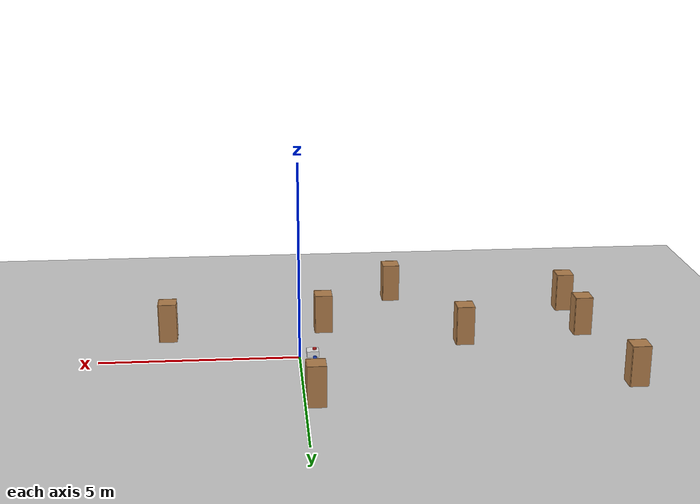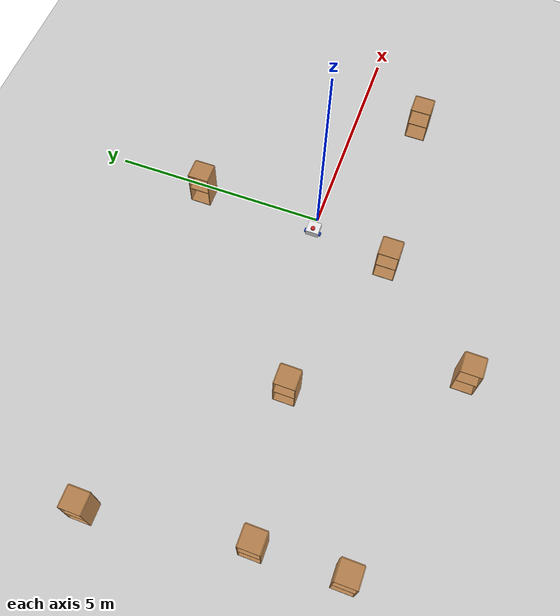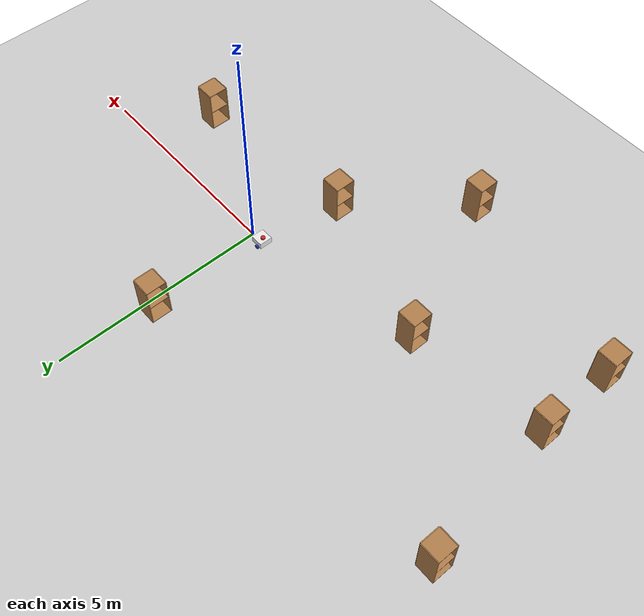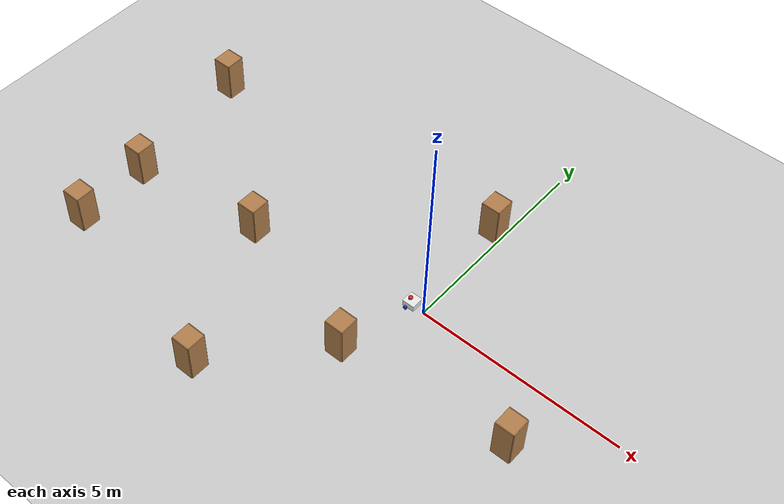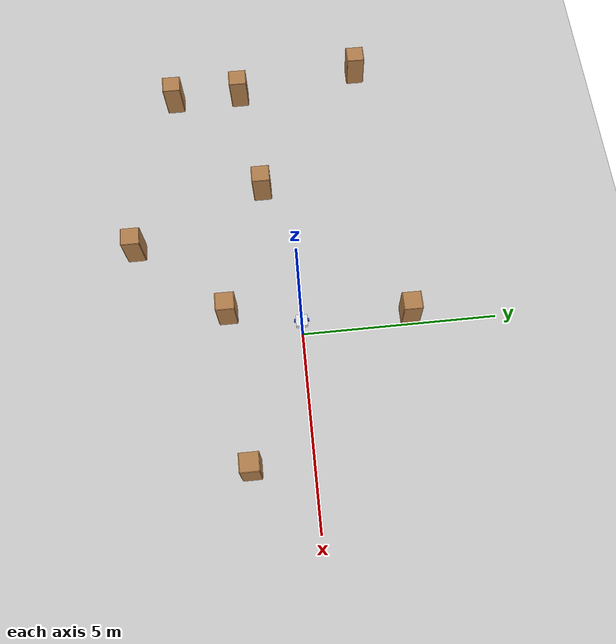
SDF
<sdf version="1.7">
 <world name="default">
  <light name="sun" type="directional">
   <pose>0 0 10 0 -0 0</pose>
   <diffuse>0.8 0.8 0.8 1</diffuse>
   <specular>0.2 0.2 0.2 1</specular>
   <attenuation>
    <range>1000</range>
    <constant>0.9</constant>
    <linear>0.01</linear>
    <quadratic>0.001</quadratic>
   </attenuation>
   <direction>-0.5 0.1 -0.9</direction>
   <spot><inner_angle>0</inner_angle><outer_angle>0</outer_angle><falloff>0</falloff></spot>
  </light>
  <model name="ground_plane">
   <static>1</static>
   <link name="link">
    <collision name="collision">
     <geometry><plane><normal>0 0 1</normal><size>100 100</size></plane></geometry>
     <surface><friction><ode><mu>100</mu><mu2>50</mu2></ode></friction></surface>
    </collision>
    <visual name="visual">
     <cast_shadows>0</cast_shadows>
     <geometry><plane><normal>0 0 1</normal><size>100 100</size></plane></geometry>
     <material>
      <script><uri>file://media/materials/scripts/gazebo.material</uri><name>Gazebo/Grey</name></script>
     </material>
    </visual>
   </link>
  </model>
  <gravity>0 0 -9.8</gravity>
  <magnetic_field>6e-06 2.3e-05 -4.2e-05</magnetic_field>
  <atmosphere type="adiabatic"/>
  <physics type="ode">
   <max_step_size>0.001</max_step_size>
   <real_time_factor>1</real_time_factor>
   <real_time_update_rate>1000</real_time_update_rate>
  </physics>
  <scene><ambient>0.4 0.4 0.4 1</ambient><background>0.7 0.7 0.7 1</background><shadows>1</shadows></scene>
  <audio><device>default</device></audio>
  <spherical_coordinates>
   <surface_model>EARTH_WGS84</surface_model>
   <latitude_deg>0</latitude_deg>
   <longitude_deg>0</longitude_deg>
   <elevation>0</elevation>
   <heading_deg>0</heading_deg>
  </spherical_coordinates>
  <model name="my_robot">
   <link name="base_link">
    <inertial>
     <pose>0.055714 0 0.078571 0 -0 0</pose>
     <mass>0.7</mass>
     <inertia>
      <ixx>0.0064169</ixx>
      <ixy>0</ixy>
      <ixz>0.00118929</ixz>
      <iyy>0.00745405</iyy>
      <iyz>0</iyz>
      <izz>0.00876214</izz>
     </inertia>
    </inertial>
    <collision name="base_link_fixed_joint_lump__chasis_collision">
     <pose>0.05 0 0.075 0 -0 0</pose>
     <geometry><box><size>0.3 0.3 0.15</size></box></geometry>
    </collision>
    <collision name="base_link_fixed_joint_lump__caster_wheel_collision_1">
     <pose>0.14 0 0 0 -0 0</pose>
     <geometry><sphere><radius>0.05</radius></sphere></geometry>
    </collision>
    <collision name="base_link_fixed_joint_lump__laser_frame_collision_2">
     <pose>0 0 0.175 0 -0 0</pose>
     <geometry><cylinder><length>0.04</length><radius>0.05</radius></cylinder></geometry>
    </collision>
    <visual name="base_link_fixed_joint_lump__chasis_visual">
     <pose>0.05 0 0.075 0 -0 0</pose>
     <geometry><box><size>0.3 0.3 0.15</size></box></geometry>
     <material>
      <script><name>Gazebo/White</name><uri>file://media/materials/scripts/gazebo.material</uri></script>
     </material>
    </visual>
    <visual name="base_link_fixed_joint_lump__caster_wheel_visual_1">
     <pose>0.14 0 0 0 -0 0</pose>
     <geometry><sphere><radius>0.05</radius></sphere></geometry>
     <material>
      <script><name>Gazebo/Black</name><uri>file://media/materials/scripts/gazebo.material</uri></script>
     </material>
    </visual>
    <visual name="base_link_fixed_joint_lump__laser_frame_visual_2">
     <pose>0 0 0.175 0 -0 0</pose>
     <geometry><cylinder><length>0.04</length><radius>0.05</radius></cylinder></geometry>
     <material>
      <script><name>Gazebo/Red</name><uri>file://media/materials/scripts/gazebo.material</uri></script>
     </material>
    </visual>
    <sensor name="laser" type="ray">
     <visualize>1</visualize>
     <update_rate>10</update_rate>
     <ray>
      <scan>
       <horizontal>
        <samples>360</samples>
        <resolution>1</resolution>
        <min_angle>-3.14</min_angle>
        <max_angle>3.14</max_angle>
       </horizontal>
       <vertical><samples>1</samples><min_angle>0</min_angle><max_angle>0</max_angle></vertical>
      </scan>
      <range><min>0.3</min><max>12</max><resolution>0.01</resolution></range>
     </ray>
     <plugin name="laser_controller" filename="libgazebo_ros_ray_sensor.so">
      <ros><argument>-/out:=scan</argument></ros>
      <output_type>sensor_msgs/LaserScan</output_type>
      <frame_name>laser_frame</frame_name>
     </plugin>
     <pose>0 0 0.175 0 -0 0</pose>
    </sensor>
   </link>
   <joint name="left_wheel_joint" type="revolute">
    <pose relative_to="base_link">0 0.175 0 -1.5708 0 0</pose>
    <parent>base_link</parent>
    <child>left_wheel</child>
    <axis>
     <xyz>0 0 1</xyz>
     <limit><lower>-1e+16</lower><upper>1e+16</upper></limit>
     <dynamics><spring_reference>0</spring_reference><spring_stiffness>0</spring_stiffness></dynamics>
    </axis>
   </joint>
   <link name="left_wheel">
    <pose relative_to="left_wheel_joint">0 0 0 0 -0 0</pose>
    <inertial>
     <mass>0.1</mass>
     <inertia>
      <ixx>7.58333e-05</ixx>
      <ixy>0</ixy>
      <ixz>0</ixz>
      <iyy>7.58333e-05</iyy>
      <iyz>0</iyz>
      <izz>0.000125</izz>
     </inertia>
    </inertial>
    <collision name="left_wheel_collision">
     <geometry><cylinder><length>0.04</length><radius>0.05</radius></cylinder></geometry>
    </collision>
    <visual name="left_wheel_visual">
     <geometry><cylinder><length>0.04</length><radius>0.05</radius></cylinder></geometry>
     <material>
      <script><name>Gazebo/Blue</name><uri>file://media/materials/scripts/gazebo.material</uri></script>
     </material>
    </visual>
   </link>
   <joint name="right_wheel_joint" type="revolute">
    <pose relative_to="base_link">0 -0.175 0 1.5708 -0 0</pose>
    <parent>base_link</parent>
    <child>right_wheel</child>
    <axis>
     <xyz>0 0 -1</xyz>
     <limit><lower>-1e+16</lower><upper>1e+16</upper></limit>
     <dynamics><spring_reference>0</spring_reference><spring_stiffness>0</spring_stiffness></dynamics>
    </axis>
   </joint>
   <link name="right_wheel">
    <pose relative_to="right_wheel_joint">0 0 0 0 -0 0</pose>
    <inertial>
     <mass>0.1</mass>
     <inertia>
      <ixx>7.58333e-05</ixx>
      <ixy>0</ixy>
      <ixz>0</ixz>
      <iyy>7.58333e-05</iyy>
      <iyz>0</iyz>
      <izz>0.000125</izz>
     </inertia>
    </inertial>
    <collision name="right_wheel_collision">
     <geometry><cylinder><length>0.04</length><radius>0.05</radius></cylinder></geometry>
    </collision>
    <visual name="right_wheel_visual">
     <geometry><cylinder><length>0.04</length><radius>0.05</radius></cylinder></geometry>
     <material>
      <script><name>Gazebo/Blue</name><uri>file://media/materials/scripts/gazebo.material</uri></script>
     </material>
    </visual>
   </link>
   <pose>-0.367799 0.000405 0.05 0 1e-06 0.000558</pose>
  </model>
  <model name="cabinet">
   <static>1</static>
   <link name="cabinet_bottom_plate">
    <inertial>
     <pose>0 0 -1 0 -0 0</pose>
     <inertia><ixx>2.05</ixx><ixy>0</ixy><ixz>0</ixz><iyy>2.05</iyy><iyz>0</iyz><izz>2.05</izz></inertia>
     <mass>25</mass>
    </inertial>
    <collision name="cabinet_bottom_plate_geom">
     <pose>0 0 0.01 0 -0 0</pose>
     <geometry><box><size>0.45 0.45 0.02</size></box></geometry>
    </collision>
    <visual name="cabinet_bottom_plate_geom_visual">
     <pose>0 0 0.01 0 -0 0</pose>
     <geometry><box><size>0.45 0.45 0.02</size></box></geometry>
     <material>
      <script><uri>file://media/materials/scripts/gazebo.material</uri><name>Gazebo/Wood</name></script>
     </material>
    </visual>
    <collision name="cabinet_bottom_plate_geom_cabinet_back_plate">
     <pose>0.235 0 0.51 0 -0 0</pose>
     <geometry><box><size>0.02 0.45 1.02</size></box></geometry>
    </collision>
    <visual name="cabinet_bottom_plate_geom_cabinet_back_plate_visual">
     <pose>0.235 0 0.51 0 -0 0</pose>
     <geometry><box><size>0.02 0.45 1.02</size></box></geometry>
     <material>
      <script><uri>file://media/materials/scripts/gazebo.material</uri><name>Gazebo/Wood</name></script>
     </material>
    </visual>
    <collision name="cabinet_bottom_plate_geom_cabinet_left_plate">
     <pose>0 0.235 0.51 0 -0 0</pose>
     <geometry><box><size>0.45 0.02 1.02</size></box></geometry>
    </collision>
    <visual name="cabinet_bottom_plate_geom_cabinet_left_plate_visual">
     <pose>0 0.235 0.51 0 -0 0</pose>
     <geometry><box><size>0.45 0.02 1.02</size></box></geometry>
     <material>
      <script><uri>file://media/materials/scripts/gazebo.material</uri><name>Gazebo/Wood</name></script>
     </material>
    </visual>
    <collision name="cabinet_bottom_plate_geom_cabinet_middle_plate">
     <pose>0 0 0.51 0 -0 0</pose>
     <geometry><box><size>0.45 0.45 0.02</size></box></geometry>
    </collision>
    <visual name="cabinet_bottom_plate_geom_cabinet_middle_plate_visual">
     <pose>0 0 0.51 0 -0 0</pose>
     <geometry><box><size>0.45 0.45 0.02</size></box></geometry>
     <material>
      <script><uri>file://media/materials/scripts/gazebo.material</uri><name>Gazebo/Wood</name></script>
     </material>
    </visual>
    <collision name="cabinet_bottom_plate_geom_cabinet_right_plate">
     <pose>0 -0.235 0.51 0 -0 0</pose>
     <geometry><box><size>0.45 0.02 1.02</size></box></geometry>
    </collision>
    <visual name="cabinet_bottom_plate_geom_cabinet_right_plate_visual">
     <pose>0 -0.235 0.51 0 -0 0</pose>
     <geometry><box><size>0.45 0.02 1.02</size></box></geometry>
     <material>
      <script><uri>file://media/materials/scripts/gazebo.material</uri><name>Gazebo/Wood</name></script>
     </material>
    </visual>
    <collision name="cabinet_bottom_plate_geom_cabinet_top_plate">
     <pose>0 0 1.01 0 -0 0</pose>
     <geometry><box><size>0.45 0.45 0.02</size></box></geometry>
    </collision>
    <visual name="cabinet_bottom_plate_geom_cabinet_top_plate_visual">
     <pose>0 0 1.01 0 -0 0</pose>
     <geometry><box><size>0.45 0.45 0.02</size></box></geometry>
     <material>
      <script><uri>file://media/materials/scripts/gazebo.material</uri><name>Gazebo/Wood</name></script>
     </material>
    </visual>
   </link>
   <pose>-7.4634 -1.17899 0 0 -0 0</pose>
  </model>
  <model name="cabinet_clone">
   <static>1</static>
   <link name="cabinet_bottom_plate">
    <inertial>
     <pose>0 0 -1 0 -0 0</pose>
     <inertia><ixx>2.05</ixx><ixy>0</ixy><ixz>0</ixz><iyy>2.05</iyy><iyz>0</iyz><izz>2.05</izz></inertia>
     <mass>25</mass>
    </inertial>
    <collision name="cabinet_bottom_plate_geom">
     <pose>0 0 0.01 0 -0 0</pose>
     <geometry><box><size>0.45 0.45 0.02</size></box></geometry>
    </collision>
    <visual name="cabinet_bottom_plate_geom_visual">
     <pose>0 0 0.01 0 -0 0</pose>
     <geometry><box><size>0.45 0.45 0.02</size></box></geometry>
     <material>
      <script><uri>file://media/materials/scripts/gazebo.material</uri><name>Gazebo/Wood</name></script>
     </material>
    </visual>
    <collision name="cabinet_bottom_plate_geom_cabinet_back_plate">
     <pose>0.235 0 0.51 0 -0 0</pose>
     <geometry><box><size>0.02 0.45 1.02</size></box></geometry>
    </collision>
    <visual name="cabinet_bottom_plate_geom_cabinet_back_plate_visual">
     <pose>0.235 0 0.51 0 -0 0</pose>
     <geometry><box><size>0.02 0.45 1.02</size></box></geometry>
     <material>
      <script><uri>file://media/materials/scripts/gazebo.material</uri><name>Gazebo/Wood</name></script>
     </material>
    </visual>
    <collision name="cabinet_bottom_plate_geom_cabinet_left_plate">
     <pose>0 0.235 0.51 0 -0 0</pose>
     <geometry><box><size>0.45 0.02 1.02</size></box></geometry>
    </collision>
    <visual name="cabinet_bottom_plate_geom_cabinet_left_plate_visual">
     <pose>0 0.235 0.51 0 -0 0</pose>
     <geometry><box><size>0.45 0.02 1.02</size></box></geometry>
     <material>
      <script><uri>file://media/materials/scripts/gazebo.material</uri><name>Gazebo/Wood</name></script>
     </material>
    </visual>
    <collision name="cabinet_bottom_plate_geom_cabinet_middle_plate">
     <pose>0 0 0.51 0 -0 0</pose>
     <geometry><box><size>0.45 0.45 0.02</size></box></geometry>
    </collision>
    <visual name="cabinet_bottom_plate_geom_cabinet_middle_plate_visual">
     <pose>0 0 0.51 0 -0 0</pose>
     <geometry><box><size>0.45 0.45 0.02</size></box></geometry>
     <material>
      <script><uri>file://media/materials/scripts/gazebo.material</uri><name>Gazebo/Wood</name></script>
     </material>
    </visual>
    <collision name="cabinet_bottom_plate_geom_cabinet_right_plate">
     <pose>0 -0.235 0.51 0 -0 0</pose>
     <geometry><box><size>0.45 0.02 1.02</size></box></geometry>
    </collision>
    <visual name="cabinet_bottom_plate_geom_cabinet_right_plate_visual">
     <pose>0 -0.235 0.51 0 -0 0</pose>
     <geometry><box><size>0.45 0.02 1.02</size></box></geometry>
     <material>
      <script><uri>file://media/materials/scripts/gazebo.material</uri><name>Gazebo/Wood</name></script>
     </material>
    </visual>
    <collision name="cabinet_bottom_plate_geom_cabinet_top_plate">
     <pose>0 0 1.01 0 -0 0</pose>
     <geometry><box><size>0.45 0.45 0.02</size></box></geometry>
    </collision>
    <visual name="cabinet_bottom_plate_geom_cabinet_top_plate_visual">
     <pose>0 0 1.01 0 -0 0</pose>
     <geometry><box><size>0.45 0.45 0.02</size></box></geometry>
     <material>
      <script><uri>file://media/materials/scripts/gazebo.material</uri><name>Gazebo/Wood</name></script>
     </material>
    </visual>
   </link>
   <pose>-7.94998 2.21092 0 0 -0 0</pose>
  </model>
  <model name="cabinet_clone_0">
   <static>1</static>
   <link name="cabinet_bottom_plate">
    <inertial>
     <pose>0 0 -1 0 -0 0</pose>
     <inertia><ixx>2.05</ixx><ixy>0</ixy><ixz>0</ixz><iyy>2.05</iyy><iyz>0</iyz><izz>2.05</izz></inertia>
     <mass>25</mass>
    </inertial>
    <collision name="cabinet_bottom_plate_geom">
     <pose>0 0 0.01 0 -0 0</pose>
     <geometry><box><size>0.45 0.45 0.02</size></box></geometry>
    </collision>
    <visual name="cabinet_bottom_plate_geom_visual">
     <pose>0 0 0.01 0 -0 0</pose>
     <geometry><box><size>0.45 0.45 0.02</size></box></geometry>
     <material>
      <script><uri>file://media/materials/scripts/gazebo.material</uri><name>Gazebo/Wood</name></script>
     </material>
    </visual>
    <collision name="cabinet_bottom_plate_geom_cabinet_back_plate">
     <pose>0.235 0 0.51 0 -0 0</pose>
     <geometry><box><size>0.02 0.45 1.02</size></box></geometry>
    </collision>
    <visual name="cabinet_bottom_plate_geom_cabinet_back_plate_visual">
     <pose>0.235 0 0.51 0 -0 0</pose>
     <geometry><box><size>0.02 0.45 1.02</size></box></geometry>
     <material>
      <script><uri>file://media/materials/scripts/gazebo.material</uri><name>Gazebo/Wood</name></script>
     </material>
    </visual>
    <collision name="cabinet_bottom_plate_geom_cabinet_left_plate">
     <pose>0 0.235 0.51 0 -0 0</pose>
     <geometry><box><size>0.45 0.02 1.02</size></box></geometry>
    </collision>
    <visual name="cabinet_bottom_plate_geom_cabinet_left_plate_visual">
     <pose>0 0.235 0.51 0 -0 0</pose>
     <geometry><box><size>0.45 0.02 1.02</size></box></geometry>
     <material>
      <script><uri>file://media/materials/scripts/gazebo.material</uri><name>Gazebo/Wood</name></script>
     </material>
    </visual>
    <collision name="cabinet_bottom_plate_geom_cabinet_middle_plate">
     <pose>0 0 0.51 0 -0 0</pose>
     <geometry><box><size>0.45 0.45 0.02</size></box></geometry>
    </collision>
    <visual name="cabinet_bottom_plate_geom_cabinet_middle_plate_visual">
     <pose>0 0 0.51 0 -0 0</pose>
     <geometry><box><size>0.45 0.45 0.02</size></box></geometry>
     <material>
      <script><uri>file://media/materials/scripts/gazebo.material</uri><name>Gazebo/Wood</name></script>
     </material>
    </visual>
    <collision name="cabinet_bottom_plate_geom_cabinet_right_plate">
     <pose>0 -0.235 0.51 0 -0 0</pose>
     <geometry><box><size>0.45 0.02 1.02</size></box></geometry>
    </collision>
    <visual name="cabinet_bottom_plate_geom_cabinet_right_plate_visual">
     <pose>0 -0.235 0.51 0 -0 0</pose>
     <geometry><box><size>0.45 0.02 1.02</size></box></geometry>
     <material>
      <script><uri>file://media/materials/scripts/gazebo.material</uri><name>Gazebo/Wood</name></script>
     </material>
    </visual>
    <collision name="cabinet_bottom_plate_geom_cabinet_top_plate">
     <pose>0 0 1.01 0 -0 0</pose>
     <geometry><box><size>0.45 0.45 0.02</size></box></geometry>
    </collision>
    <visual name="cabinet_bottom_plate_geom_cabinet_top_plate_visual">
     <pose>0 0 1.01 0 -0 0</pose>
     <geometry><box><size>0.45 0.45 0.02</size></box></geometry>
     <material>
      <script><uri>file://media/materials/scripts/gazebo.material</uri><name>Gazebo/Wood</name></script>
     </material>
    </visual>
   </link>
   <pose>-4.27988 -0.740314 0 0 -0 0</pose>
  </model>
  <model name="cabinet_clone_1">
   <static>1</static>
   <link name="cabinet_bottom_plate">
    <inertial>
     <pose>0 0 -1 0 -0 0</pose>
     <inertia><ixx>2.05</ixx><ixy>0</ixy><ixz>0</ixz><iyy>2.05</iyy><iyz>0</iyz><izz>2.05</izz></inertia>
     <mass>25</mass>
    </inertial>
    <collision name="cabinet_bottom_plate_geom">
     <pose>0 0 0.01 0 -0 0</pose>
     <geometry><box><size>0.45 0.45 0.02</size></box></geometry>
    </collision>
    <visual name="cabinet_bottom_plate_geom_visual">
     <pose>0 0 0.01 0 -0 0</pose>
     <geometry><box><size>0.45 0.45 0.02</size></box></geometry>
     <material>
      <script><uri>file://media/materials/scripts/gazebo.material</uri><name>Gazebo/Wood</name></script>
     </material>
    </visual>
    <collision name="cabinet_bottom_plate_geom_cabinet_back_plate">
     <pose>0.235 0 0.51 0 -0 0</pose>
     <geometry><box><size>0.02 0.45 1.02</size></box></geometry>
    </collision>
    <visual name="cabinet_bottom_plate_geom_cabinet_back_plate_visual">
     <pose>0.235 0 0.51 0 -0 0</pose>
     <geometry><box><size>0.02 0.45 1.02</size></box></geometry>
     <material>
      <script><uri>file://media/materials/scripts/gazebo.material</uri><name>Gazebo/Wood</name></script>
     </material>
    </visual>
    <collision name="cabinet_bottom_plate_geom_cabinet_left_plate">
     <pose>0 0.235 0.51 0 -0 0</pose>
     <geometry><box><size>0.45 0.02 1.02</size></box></geometry>
    </collision>
    <visual name="cabinet_bottom_plate_geom_cabinet_left_plate_visual">
     <pose>0 0.235 0.51 0 -0 0</pose>
     <geometry><box><size>0.45 0.02 1.02</size></box></geometry>
     <material>
      <script><uri>file://media/materials/scripts/gazebo.material</uri><name>Gazebo/Wood</name></script>
     </material>
    </visual>
    <collision name="cabinet_bottom_plate_geom_cabinet_middle_plate">
     <pose>0 0 0.51 0 -0 0</pose>
     <geometry><box><size>0.45 0.45 0.02</size></box></geometry>
    </collision>
    <visual name="cabinet_bottom_plate_geom_cabinet_middle_plate_visual">
     <pose>0 0 0.51 0 -0 0</pose>
     <geometry><box><size>0.45 0.45 0.02</size></box></geometry>
     <material>
      <script><uri>file://media/materials/scripts/gazebo.material</uri><name>Gazebo/Wood</name></script>
     </material>
    </visual>
    <collision name="cabinet_bottom_plate_geom_cabinet_right_plate">
     <pose>0 -0.235 0.51 0 -0 0</pose>
     <geometry><box><size>0.45 0.02 1.02</size></box></geometry>
    </collision>
    <visual name="cabinet_bottom_plate_geom_cabinet_right_plate_visual">
     <pose>0 -0.235 0.51 0 -0 0</pose>
     <geometry><box><size>0.45 0.02 1.02</size></box></geometry>
     <material>
      <script><uri>file://media/materials/scripts/gazebo.material</uri><name>Gazebo/Wood</name></script>
     </material>
    </visual>
    <collision name="cabinet_bottom_plate_geom_cabinet_top_plate">
     <pose>0 0 1.01 0 -0 0</pose>
     <geometry><box><size>0.45 0.45 0.02</size></box></geometry>
    </collision>
    <visual name="cabinet_bottom_plate_geom_cabinet_top_plate_visual">
     <pose>0 0 1.01 0 -0 0</pose>
     <geometry><box><size>0.45 0.45 0.02</size></box></geometry>
     <material>
      <script><uri>file://media/materials/scripts/gazebo.material</uri><name>Gazebo/Wood</name></script>
     </material>
    </visual>
   </link>
   <pose>-2.74349 -4.20611 0 0 -0 0</pose>
  </model>
  <model name="cabinet_clone_2">
   <static>1</static>
   <link name="cabinet_bottom_plate">
    <inertial>
     <pose>0 0 -1 0 -0 0</pose>
     <inertia><ixx>2.05</ixx><ixy>0</ixy><ixz>0</ixz><iyy>2.05</iyy><iyz>0</iyz><izz>2.05</izz></inertia>
     <mass>25</mass>
    </inertial>
    <collision name="cabinet_bottom_plate_geom">
     <pose>0 0 0.01 0 -0 0</pose>
     <geometry><box><size>0.45 0.45 0.02</size></box></geometry>
    </collision>
    <visual name="cabinet_bottom_plate_geom_visual">
     <pose>0 0 0.01 0 -0 0</pose>
     <geometry><box><size>0.45 0.45 0.02</size></box></geometry>
     <material>
      <script><uri>file://media/materials/scripts/gazebo.material</uri><name>Gazebo/Wood</name></script>
     </material>
    </visual>
    <collision name="cabinet_bottom_plate_geom_cabinet_back_plate">
     <pose>0.235 0 0.51 0 -0 0</pose>
     <geometry><box><size>0.02 0.45 1.02</size></box></geometry>
    </collision>
    <visual name="cabinet_bottom_plate_geom_cabinet_back_plate_visual">
     <pose>0.235 0 0.51 0 -0 0</pose>
     <geometry><box><size>0.02 0.45 1.02</size></box></geometry>
     <material>
      <script><uri>file://media/materials/scripts/gazebo.material</uri><name>Gazebo/Wood</name></script>
     </material>
    </visual>
    <collision name="cabinet_bottom_plate_geom_cabinet_left_plate">
     <pose>0 0.235 0.51 0 -0 0</pose>
     <geometry><box><size>0.45 0.02 1.02</size></box></geometry>
    </collision>
    <visual name="cabinet_bottom_plate_geom_cabinet_left_plate_visual">
     <pose>0 0.235 0.51 0 -0 0</pose>
     <geometry><box><size>0.45 0.02 1.02</size></box></geometry>
     <material>
      <script><uri>file://media/materials/scripts/gazebo.material</uri><name>Gazebo/Wood</name></script>
     </material>
    </visual>
    <collision name="cabinet_bottom_plate_geom_cabinet_middle_plate">
     <pose>0 0 0.51 0 -0 0</pose>
     <geometry><box><size>0.45 0.45 0.02</size></box></geometry>
    </collision>
    <visual name="cabinet_bottom_plate_geom_cabinet_middle_plate_visual">
     <pose>0 0 0.51 0 -0 0</pose>
     <geometry><box><size>0.45 0.45 0.02</size></box></geometry>
     <material>
      <script><uri>file://media/materials/scripts/gazebo.material</uri><name>Gazebo/Wood</name></script>
     </material>
    </visual>
    <collision name="cabinet_bottom_plate_geom_cabinet_right_plate">
     <pose>0 -0.235 0.51 0 -0 0</pose>
     <geometry><box><size>0.45 0.02 1.02</size></box></geometry>
    </collision>
    <visual name="cabinet_bottom_plate_geom_cabinet_right_plate_visual">
     <pose>0 -0.235 0.51 0 -0 0</pose>
     <geometry><box><size>0.45 0.02 1.02</size></box></geometry>
     <material>
      <script><uri>file://media/materials/scripts/gazebo.material</uri><name>Gazebo/Wood</name></script>
     </material>
    </visual>
    <collision name="cabinet_bottom_plate_geom_cabinet_top_plate">
     <pose>0 0 1.01 0 -0 0</pose>
     <geometry><box><size>0.45 0.45 0.02</size></box></geometry>
    </collision>
    <visual name="cabinet_bottom_plate_geom_cabinet_top_plate_visual">
     <pose>0 0 1.01 0 -0 0</pose>
     <geometry><box><size>0.45 0.45 0.02</size></box></geometry>
     <material>
      <script><uri>file://media/materials/scripts/gazebo.material</uri><name>Gazebo/Wood</name></script>
     </material>
    </visual>
   </link>
   <pose>-7.42033 -3.03313 0 0 -0 0</pose>
  </model>
  <model name="cabinet_clone_3">
   <static>1</static>
   <link name="cabinet_bottom_plate">
    <inertial>
     <pose>0 0 -1 0 -0 0</pose>
     <inertia><ixx>2.05</ixx><ixy>0</ixy><ixz>0</ixz><iyy>2.05</iyy><iyz>0</iyz><izz>2.05</izz></inertia>
     <mass>25</mass>
    </inertial>
    <collision name="cabinet_bottom_plate_geom">
     <pose>0 0 0.01 0 -0 0</pose>
     <geometry><box><size>0.45 0.45 0.02</size></box></geometry>
    </collision>
    <visual name="cabinet_bottom_plate_geom_visual">
     <pose>0 0 0.01 0 -0 0</pose>
     <geometry><box><size>0.45 0.45 0.02</size></box></geometry>
     <material>
      <script><uri>file://media/materials/scripts/gazebo.material</uri><name>Gazebo/Wood</name></script>
     </material>
    </visual>
    <collision name="cabinet_bottom_plate_geom_cabinet_back_plate">
     <pose>0.235 0 0.51 0 -0 0</pose>
     <geometry><box><size>0.02 0.45 1.02</size></box></geometry>
    </collision>
    <visual name="cabinet_bottom_plate_geom_cabinet_back_plate_visual">
     <pose>0.235 0 0.51 0 -0 0</pose>
     <geometry><box><size>0.02 0.45 1.02</size></box></geometry>
     <material>
      <script><uri>file://media/materials/scripts/gazebo.material</uri><name>Gazebo/Wood</name></script>
     </material>
    </visual>
    <collision name="cabinet_bottom_plate_geom_cabinet_left_plate">
     <pose>0 0.235 0.51 0 -0 0</pose>
     <geometry><box><size>0.45 0.02 1.02</size></box></geometry>
    </collision>
    <visual name="cabinet_bottom_plate_geom_cabinet_left_plate_visual">
     <pose>0 0.235 0.51 0 -0 0</pose>
     <geometry><box><size>0.45 0.02 1.02</size></box></geometry>
     <material>
      <script><uri>file://media/materials/scripts/gazebo.material</uri><name>Gazebo/Wood</name></script>
     </material>
    </visual>
    <collision name="cabinet_bottom_plate_geom_cabinet_middle_plate">
     <pose>0 0 0.51 0 -0 0</pose>
     <geometry><box><size>0.45 0.45 0.02</size></box></geometry>
    </collision>
    <visual name="cabinet_bottom_plate_geom_cabinet_middle_plate_visual">
     <pose>0 0 0.51 0 -0 0</pose>
     <geometry><box><size>0.45 0.45 0.02</size></box></geometry>
     <material>
      <script><uri>file://media/materials/scripts/gazebo.material</uri><name>Gazebo/Wood</name></script>
     </material>
    </visual>
    <collision name="cabinet_bottom_plate_geom_cabinet_right_plate">
     <pose>0 -0.235 0.51 0 -0 0</pose>
     <geometry><box><size>0.45 0.02 1.02</size></box></geometry>
    </collision>
    <visual name="cabinet_bottom_plate_geom_cabinet_right_plate_visual">
     <pose>0 -0.235 0.51 0 -0 0</pose>
     <geometry><box><size>0.45 0.02 1.02</size></box></geometry>
     <material>
      <script><uri>file://media/materials/scripts/gazebo.material</uri><name>Gazebo/Wood</name></script>
     </material>
    </visual>
    <collision name="cabinet_bottom_plate_geom_cabinet_top_plate">
     <pose>0 0 1.01 0 -0 0</pose>
     <geometry><box><size>0.45 0.45 0.02</size></box></geometry>
    </collision>
    <visual name="cabinet_bottom_plate_geom_cabinet_top_plate_visual">
     <pose>0 0 1.01 0 -0 0</pose>
     <geometry><box><size>0.45 0.45 0.02</size></box></geometry>
     <material>
      <script><uri>file://media/materials/scripts/gazebo.material</uri><name>Gazebo/Wood</name></script>
     </material>
    </visual>
   </link>
   <pose>-0.707049 -1.87313 0 0 -0 0</pose>
  </model>
  <model name="cabinet_clone_4">
   <static>1</static>
   <link name="cabinet_bottom_plate">
    <inertial>
     <pose>0 0 -1 0 -0 0</pose>
     <inertia><ixx>2.05</ixx><ixy>0</ixy><ixz>0</ixz><iyy>2.05</iyy><iyz>0</iyz><izz>2.05</izz></inertia>
     <mass>25</mass>
    </inertial>
    <collision name="cabinet_bottom_plate_geom">
     <pose>0 0 0.01 0 -0 0</pose>
     <geometry><box><size>0.45 0.45 0.02</size></box></geometry>
    </collision>
    <visual name="cabinet_bottom_plate_geom_visual">
     <pose>0 0 0.01 0 -0 0</pose>
     <geometry><box><size>0.45 0.45 0.02</size></box></geometry>
     <material>
      <script><uri>file://media/materials/scripts/gazebo.material</uri><name>Gazebo/Wood</name></script>
     </material>
    </visual>
    <collision name="cabinet_bottom_plate_geom_cabinet_back_plate">
     <pose>0.235 0 0.51 0 -0 0</pose>
     <geometry><box><size>0.02 0.45 1.02</size></box></geometry>
    </collision>
    <visual name="cabinet_bottom_plate_geom_cabinet_back_plate_visual">
     <pose>0.235 0 0.51 0 -0 0</pose>
     <geometry><box><size>0.02 0.45 1.02</size></box></geometry>
     <material>
      <script><uri>file://media/materials/scripts/gazebo.material</uri><name>Gazebo/Wood</name></script>
     </material>
    </visual>
    <collision name="cabinet_bottom_plate_geom_cabinet_left_plate">
     <pose>0 0.235 0.51 0 -0 0</pose>
     <geometry><box><size>0.45 0.02 1.02</size></box></geometry>
    </collision>
    <visual name="cabinet_bottom_plate_geom_cabinet_left_plate_visual">
     <pose>0 0.235 0.51 0 -0 0</pose>
     <geometry><box><size>0.45 0.02 1.02</size></box></geometry>
     <material>
      <script><uri>file://media/materials/scripts/gazebo.material</uri><name>Gazebo/Wood</name></script>
     </material>
    </visual>
    <collision name="cabinet_bottom_plate_geom_cabinet_middle_plate">
     <pose>0 0 0.51 0 -0 0</pose>
     <geometry><box><size>0.45 0.45 0.02</size></box></geometry>
    </collision>
    <visual name="cabinet_bottom_plate_geom_cabinet_middle_plate_visual">
     <pose>0 0 0.51 0 -0 0</pose>
     <geometry><box><size>0.45 0.45 0.02</size></box></geometry>
     <material>
      <script><uri>file://media/materials/scripts/gazebo.material</uri><name>Gazebo/Wood</name></script>
     </material>
    </visual>
    <collision name="cabinet_bottom_plate_geom_cabinet_right_plate">
     <pose>0 -0.235 0.51 0 -0 0</pose>
     <geometry><box><size>0.45 0.02 1.02</size></box></geometry>
    </collision>
    <visual name="cabinet_bottom_plate_geom_cabinet_right_plate_visual">
     <pose>0 -0.235 0.51 0 -0 0</pose>
     <geometry><box><size>0.45 0.02 1.02</size></box></geometry>
     <material>
      <script><uri>file://media/materials/scripts/gazebo.material</uri><name>Gazebo/Wood</name></script>
     </material>
    </visual>
    <collision name="cabinet_bottom_plate_geom_cabinet_top_plate">
     <pose>0 0 1.01 0 -0 0</pose>
     <geometry><box><size>0.45 0.45 0.02</size></box></geometry>
    </collision>
    <visual name="cabinet_bottom_plate_geom_cabinet_top_plate_visual">
     <pose>0 0 1.01 0 -0 0</pose>
     <geometry><box><size>0.45 0.45 0.02</size></box></geometry>
     <material>
      <script><uri>file://media/materials/scripts/gazebo.material</uri><name>Gazebo/Wood</name></script>
     </material>
    </visual>
   </link>
   <pose>-0.258245 2.78693 0 0 -0 0</pose>
  </model>
  <model name="cabinet_clone_5">
   <static>1</static>
   <link name="cabinet_bottom_plate">
    <inertial>
     <pose>0 0 -1 0 -0 0</pose>
     <inertia><ixx>2.05</ixx><ixy>0</ixy><ixz>0</ixz><iyy>2.05</iyy><iyz>0</iyz><izz>2.05</izz></inertia>
     <mass>25</mass>
    </inertial>
    <collision name="cabinet_bottom_plate_geom">
     <pose>0 0 0.01 0 -0 0</pose>
     <geometry><box><size>0.45 0.45 0.02</size></box></geometry>
    </collision>
    <visual name="cabinet_bottom_plate_geom_visual">
     <pose>0 0 0.01 0 -0 0</pose>
     <geometry><box><size>0.45 0.45 0.02</size></box></geometry>
     <material>
      <script><uri>file://media/materials/scripts/gazebo.material</uri><name>Gazebo/Wood</name></script>
     </material>
    </visual>
    <collision name="cabinet_bottom_plate_geom_cabinet_back_plate">
     <pose>0.235 0 0.51 0 -0 0</pose>
     <geometry><box><size>0.02 0.45 1.02</size></box></geometry>
    </collision>
    <visual name="cabinet_bottom_plate_geom_cabinet_back_plate_visual">
     <pose>0.235 0 0.51 0 -0 0</pose>
     <geometry><box><size>0.02 0.45 1.02</size></box></geometry>
     <material>
      <script><uri>file://media/materials/scripts/gazebo.material</uri><name>Gazebo/Wood</name></script>
     </material>
    </visual>
    <collision name="cabinet_bottom_plate_geom_cabinet_left_plate">
     <pose>0 0.235 0.51 0 -0 0</pose>
     <geometry><box><size>0.45 0.02 1.02</size></box></geometry>
    </collision>
    <visual name="cabinet_bottom_plate_geom_cabinet_left_plate_visual">
     <pose>0 0.235 0.51 0 -0 0</pose>
     <geometry><box><size>0.45 0.02 1.02</size></box></geometry>
     <material>
      <script><uri>file://media/materials/scripts/gazebo.material</uri><name>Gazebo/Wood</name></script>
     </material>
    </visual>
    <collision name="cabinet_bottom_plate_geom_cabinet_middle_plate">
     <pose>0 0 0.51 0 -0 0</pose>
     <geometry><box><size>0.45 0.45 0.02</size></box></geometry>
    </collision>
    <visual name="cabinet_bottom_plate_geom_cabinet_middle_plate_visual">
     <pose>0 0 0.51 0 -0 0</pose>
     <geometry><box><size>0.45 0.45 0.02</size></box></geometry>
     <material>
      <script><uri>file://media/materials/scripts/gazebo.material</uri><name>Gazebo/Wood</name></script>
     </material>
    </visual>
    <collision name="cabinet_bottom_plate_geom_cabinet_right_plate">
     <pose>0 -0.235 0.51 0 -0 0</pose>
     <geometry><box><size>0.45 0.02 1.02</size></box></geometry>
    </collision>
    <visual name="cabinet_bottom_plate_geom_cabinet_right_plate_visual">
     <pose>0 -0.235 0.51 0 -0 0</pose>
     <geometry><box><size>0.45 0.02 1.02</size></box></geometry>
     <material>
      <script><uri>file://media/materials/scripts/gazebo.material</uri><name>Gazebo/Wood</name></script>
     </material>
    </visual>
    <collision name="cabinet_bottom_plate_geom_cabinet_top_plate">
     <pose>0 0 1.01 0 -0 0</pose>
     <geometry><box><size>0.45 0.45 0.02</size></box></geometry>
    </collision>
    <visual name="cabinet_bottom_plate_geom_cabinet_top_plate_visual">
     <pose>0 0 1.01 0 -0 0</pose>
     <geometry><box><size>0.45 0.45 0.02</size></box></geometry>
     <material>
      <script><uri>file://media/materials/scripts/gazebo.material</uri><name>Gazebo/Wood</name></script>
     </material>
    </visual>
   </link>
   <pose>3.33487 -1.50763 0 0 -0 0</pose>
  </model>
 </world>
</sdf>
